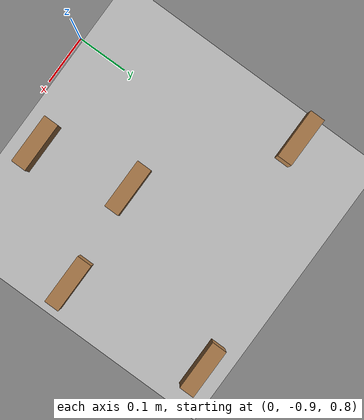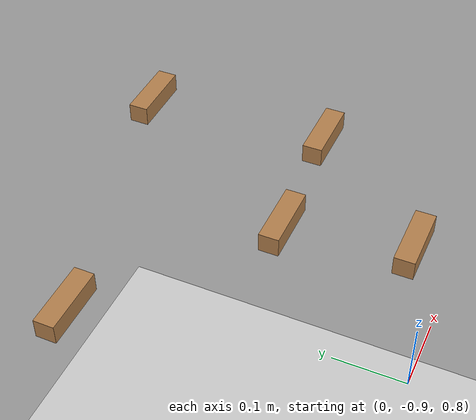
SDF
<sdf version="1.7">
 <world name="default">
  <light name="sun" type="directional">
   <pose>0 0 10 0 -0 0</pose>
   <diffuse>0.8 0.8 0.8 1</diffuse>
   <specular>0.2 0.2 0.2 1</specular>
   <attenuation>
    <range>1000</range>
    <constant>0.9</constant>
    <linear>0.01</linear>
    <quadratic>0.001</quadratic>
   </attenuation>
   <direction>-0.5 0.1 -0.9</direction>
   <spot><inner_angle>0</inner_angle><outer_angle>0</outer_angle><falloff>0</falloff></spot>
  </light>
  <gravity>0 0 -9.8</gravity>
  <magnetic_field>6e-06 2.3e-05 -4.2e-05</magnetic_field>
  <atmosphere type="adiabatic"/>
  <physics type="ode">
   <max_step_size>0.001</max_step_size>
   <real_time_factor>1</real_time_factor>
   <real_time_update_rate>1000</real_time_update_rate>
  </physics>
  <scene><ambient>0.4 0.4 0.4 1</ambient><background>0.7 0.7 0.7 1</background><shadows>1</shadows></scene>
  <spherical_coordinates>
   <surface_model>EARTH_WGS84</surface_model>
   <latitude_deg>0</latitude_deg>
   <longitude_deg>0</longitude_deg>
   <elevation>0</elevation>
   <heading_deg>0</heading_deg>
  </spherical_coordinates>
  <model name="ground_plane">
   <static>1</static>
   <link name="link">
    <collision name="collision">
     <geometry><plane><normal>0 0 1</normal><size>100 100</size></plane></geometry>
     <surface>
      <contact><collide_bitmask>65535</collide_bitmask></contact>
      <friction><ode><mu>100</mu><mu2>50</mu2></ode></friction>
     </surface>
    </collision>
    <visual name="visual">
     <cast_shadows>0</cast_shadows>
     <geometry><plane><normal>0 0 1</normal><size>100 100</size></plane></geometry>
     <material>
      <script><uri>file://media/materials/scripts/gazebo.material</uri><name>Gazebo/Grey</name></script>
     </material>
    </visual>
   </link>
  </model>
  <model name="unit_cylinder">
   <pose>0.007517 0.039531 -2.08389 0.064087 0.124552 0.476821</pose>
   <link name="link">
    <inertial>
     <mass>1</mass>
     <inertia><ixx>0.145833</ixx><ixy>0</ixy><ixz>0</ixz><iyy>0.145833</iyy><iyz>0</iyz><izz>0.125</izz></inertia>
    </inertial>
    <collision name="collision">
     <geometry><cylinder><radius>23.1912</radius><length>2.23849</length></cylinder></geometry>
    </collision>
    <visual name="visual">
     <geometry><cylinder><radius>23.1912</radius><length>2.23849</length></cylinder></geometry>
     <material>
      <script><name>Gazebo/Grey</name><uri>file://media/materials/scripts/gazebo.material</uri></script>
     </material>
    </visual>
   </link>
  </model>
  <model name="box_block">
   <link name="link">
    <inertial>
     <mass>0.063</mass>
     <inertia>
      <ixx>9.45e-06</ixx>
      <ixy>0</ixy>
      <ixz>0</ixz>
      <iyy>5.723e-05</iyy>
      <iyz>0</iyz>
      <izz>5.723e-05</izz>
     </inertia>
    </inertial>
    <visual name="visual">
     <geometry><box><size>0.1 0.03 0.03</size></box></geometry>
     <material>
      <script><name>Gazebo/Wood</name><uri>file://media/materials/scripts/gazebo.material</uri></script>
      <shader type="pixel"><normal_map>__default__</normal_map></shader>
      <ambient>1 1 1 1</ambient>
      <diffuse>1 1 1 1</diffuse>
      <specular>0.2 0.2 0.2 1</specular>
      <emissive>0 0 0 1</emissive>
     </material>
    </visual>
    <collision name="collision">
     <geometry><box><size>0.1 0.03 0.03</size></box></geometry>
     <surface>
      <friction>
       <ode><mu>1</mu><mu2>1</mu2><fdir1>0 0 0</fdir1><slip1>0</slip1><slip2>0</slip2></ode>
       <torsional>
        <coefficient>1</coefficient>
        <patch_radius>0</patch_radius>
        <surface_radius>0</surface_radius>
        <use_patch_radius>1</use_patch_radius>
        <ode><slip>0</slip></ode>
       </torsional>
      </friction>
      <bounce><restitution_coefficient>0</restitution_coefficient><threshold>1e+06</threshold></bounce>
      <contact>
       <collide_without_contact>0</collide_without_contact>
       <collide_without_contact_bitmask>1</collide_without_contact_bitmask>
       <collide_bitmask>1</collide_bitmask>
       <ode>
        <soft_cfm>0</soft_cfm>
        <soft_erp>0.2</soft_erp>
        <kp>1e+13</kp>
        <kd>1</kd>
        <max_vel>0.01</max_vel>
        <min_depth>0</min_depth>
       </ode>
       <bullet>
        <split_impulse>1</split_impulse>
        <split_impulse_penetration_threshold>-0.01</split_impulse_penetration_threshold>
        <soft_cfm>0</soft_cfm>
        <soft_erp>0.2</soft_erp>
        <kp>1e+13</kp>
        <kd>1</kd>
       </bullet>
      </contact>
     </surface>
    </collision>
   </link>
   <static>0</static>
   <pose>0.172828 -0.660427 0.830071 0 -0 0</pose>
  </model>
  <model name="box_block_clone">
   <link name="link">
    <inertial>
     <mass>0.063</mass>
     <inertia>
      <ixx>9.45e-06</ixx>
      <ixy>0</ixy>
      <ixz>0</ixz>
      <iyy>5.723e-05</iyy>
      <iyz>0</iyz>
      <izz>5.723e-05</izz>
     </inertia>
    </inertial>
    <visual name="visual">
     <geometry><box><size>0.1 0.03 0.03</size></box></geometry>
     <material>
      <script><name>Gazebo/Wood</name><uri>file://media/materials/scripts/gazebo.material</uri></script>
      <shader type="pixel"><normal_map>__default__</normal_map></shader>
      <ambient>1 1 1 1</ambient>
      <diffuse>1 1 1 1</diffuse>
      <specular>0.2 0.2 0.2 1</specular>
      <emissive>0 0 0 1</emissive>
     </material>
    </visual>
    <collision name="collision">
     <geometry><box><size>0.1 0.03 0.03</size></box></geometry>
     <surface>
      <friction>
       <ode><mu>1</mu><mu2>1</mu2><fdir1>0 0 0</fdir1><slip1>0</slip1><slip2>0</slip2></ode>
       <torsional>
        <coefficient>1</coefficient>
        <patch_radius>0</patch_radius>
        <surface_radius>0</surface_radius>
        <use_patch_radius>1</use_patch_radius>
        <ode><slip>0</slip></ode>
       </torsional>
      </friction>
      <bounce><restitution_coefficient>0</restitution_coefficient><threshold>1e+06</threshold></bounce>
      <contact>
       <collide_without_contact>0</collide_without_contact>
       <collide_without_contact_bitmask>1</collide_without_contact_bitmask>
       <collide_bitmask>1</collide_bitmask>
       <ode>
        <soft_cfm>0</soft_cfm>
        <soft_erp>0.2</soft_erp>
        <kp>1e+13</kp>
        <kd>1</kd>
        <max_vel>0.01</max_vel>
        <min_depth>0</min_depth>
       </ode>
       <bullet>
        <split_impulse>1</split_impulse>
        <split_impulse_penetration_threshold>-0.01</split_impulse_penetration_threshold>
        <soft_cfm>0</soft_cfm>
        <soft_erp>0.2</soft_erp>
        <kp>1e+13</kp>
        <kd>1</kd>
       </bullet>
      </contact>
     </surface>
    </collision>
   </link>
   <static>0</static>
   <pose>-0.081509 -0.464143 0.830071 0 -0 0</pose>
  </model>
  <model name="box_block_clone_0">
   <link name="link">
    <inertial>
     <mass>0.063</mass>
     <inertia>
      <ixx>9.45e-06</ixx>
      <ixy>0</ixy>
      <ixz>0</ixz>
      <iyy>5.723e-05</iyy>
      <iyz>0</iyz>
      <izz>5.723e-05</izz>
     </inertia>
    </inertial>
    <visual name="visual">
     <geometry><box><size>0.1 0.03 0.03</size></box></geometry>
     <material>
      <script><name>Gazebo/Wood</name><uri>file://media/materials/scripts/gazebo.material</uri></script>
      <shader type="pixel"><normal_map>__default__</normal_map></shader>
      <ambient>1 1 1 1</ambient>
      <diffuse>1 1 1 1</diffuse>
      <specular>0.2 0.2 0.2 1</specular>
      <emissive>0 0 0 1</emissive>
     </material>
    </visual>
    <collision name="collision">
     <geometry><box><size>0.1 0.03 0.03</size></box></geometry>
     <surface>
      <friction>
       <ode><mu>1</mu><mu2>1</mu2><fdir1>0 0 0</fdir1><slip1>0</slip1><slip2>0</slip2></ode>
       <torsional>
        <coefficient>1</coefficient>
        <patch_radius>0</patch_radius>
        <surface_radius>0</surface_radius>
        <use_patch_radius>1</use_patch_radius>
        <ode><slip>0</slip></ode>
       </torsional>
      </friction>
      <bounce><restitution_coefficient>0</restitution_coefficient><threshold>1e+06</threshold></bounce>
      <contact>
       <collide_without_contact>0</collide_without_contact>
       <collide_without_contact_bitmask>1</collide_without_contact_bitmask>
       <collide_bitmask>1</collide_bitmask>
       <ode>
        <soft_cfm>0</soft_cfm>
        <soft_erp>0.2</soft_erp>
        <kp>1e+13</kp>
        <kd>1</kd>
        <max_vel>0.01</max_vel>
        <min_depth>0</min_depth>
       </ode>
       <bullet>
        <split_impulse>1</split_impulse>
        <split_impulse_penetration_threshold>-0.01</split_impulse_penetration_threshold>
        <soft_cfm>0</soft_cfm>
        <soft_erp>0.2</soft_erp>
        <kp>1e+13</kp>
        <kd>1</kd>
       </bullet>
      </contact>
     </surface>
    </collision>
   </link>
   <static>0</static>
   <pose>0.206111 -0.841794 0.830071 0 -0 0</pose>
  </model>
  <model name="box_block_clone_1">
   <link name="link">
    <inertial>
     <mass>0.063</mass>
     <inertia>
      <ixx>9.45e-06</ixx>
      <ixy>0</ixy>
      <ixz>0</ixz>
      <iyy>5.723e-05</iyy>
      <iyz>0</iyz>
      <izz>5.723e-05</izz>
     </inertia>
    </inertial>
    <visual name="visual">
     <geometry><box><size>0.1 0.03 0.03</size></box></geometry>
     <material>
      <script><name>Gazebo/Wood</name><uri>file://media/materials/scripts/gazebo.material</uri></script>
      <shader type="pixel"><normal_map>__default__</normal_map></shader>
      <ambient>1 1 1 1</ambient>
      <diffuse>1 1 1 1</diffuse>
      <specular>0.2 0.2 0.2 1</specular>
      <emissive>0 0 0 1</emissive>
     </material>
    </visual>
    <collision name="collision">
     <geometry><box><size>0.1 0.03 0.03</size></box></geometry>
     <surface>
      <friction>
       <ode><mu>1</mu><mu2>1</mu2><fdir1>0 0 0</fdir1><slip1>0</slip1><slip2>0</slip2></ode>
       <torsional>
        <coefficient>1</coefficient>
        <patch_radius>0</patch_radius>
        <surface_radius>0</surface_radius>
        <use_patch_radius>1</use_patch_radius>
        <ode><slip>0</slip></ode>
       </torsional>
      </friction>
      <bounce><restitution_coefficient>0</restitution_coefficient><threshold>1e+06</threshold></bounce>
      <contact>
       <collide_without_contact>0</collide_without_contact>
       <collide_without_contact_bitmask>1</collide_without_contact_bitmask>
       <collide_bitmask>1</collide_bitmask>
       <ode>
        <soft_cfm>0</soft_cfm>
        <soft_erp>0.2</soft_erp>
        <kp>1e+13</kp>
        <kd>1</kd>
        <max_vel>0.01</max_vel>
        <min_depth>0</min_depth>
       </ode>
       <bullet>
        <split_impulse>1</split_impulse>
        <split_impulse_penetration_threshold>-0.01</split_impulse_penetration_threshold>
        <soft_cfm>0</soft_cfm>
        <soft_erp>0.2</soft_erp>
        <kp>1e+13</kp>
        <kd>1</kd>
       </bullet>
      </contact>
     </surface>
    </collision>
   </link>
   <static>0</static>
   <pose>0.354851 -0.361049 0.830071 0 -0 0</pose>
  </model>
  <model name="box_block_clone_2">
   <link name="link">
    <inertial>
     <mass>0.063</mass>
     <inertia>
      <ixx>9.45e-06</ixx>
      <ixy>0</ixy>
      <ixz>0</ixz>
      <iyy>5.723e-05</iyy>
      <iyz>0</iyz>
      <izz>5.723e-05</izz>
     </inertia>
    </inertial>
    <visual name="visual">
     <geometry><box><size>0.1 0.03 0.03</size></box></geometry>
     <material>
      <script><name>Gazebo/Wood</name><uri>file://media/materials/scripts/gazebo.material</uri></script>
      <shader type="pixel"><normal_map>__default__</normal_map></shader>
      <ambient>1 1 1 1</ambient>
      <diffuse>1 1 1 1</diffuse>
      <specular>0.2 0.2 0.2 1</specular>
      <emissive>0 0 0 1</emissive>
     </material>
    </visual>
    <collision name="collision">
     <geometry><box><size>0.1 0.03 0.03</size></box></geometry>
     <surface>
      <friction>
       <ode><mu>1</mu><mu2>1</mu2><fdir1>0 0 0</fdir1><slip1>0</slip1><slip2>0</slip2></ode>
       <torsional>
        <coefficient>1</coefficient>
        <patch_radius>0</patch_radius>
        <surface_radius>0</surface_radius>
        <use_patch_radius>1</use_patch_radius>
        <ode><slip>0</slip></ode>
       </torsional>
      </friction>
      <bounce><restitution_coefficient>0</restitution_coefficient><threshold>1e+06</threshold></bounce>
      <contact>
       <collide_without_contact>0</collide_without_contact>
       <collide_without_contact_bitmask>1</collide_without_contact_bitmask>
       <collide_bitmask>1</collide_bitmask>
       <ode>
        <soft_cfm>0</soft_cfm>
        <soft_erp>0.2</soft_erp>
        <kp>1e+13</kp>
        <kd>1</kd>
        <max_vel>0.01</max_vel>
        <min_depth>0</min_depth>
       </ode>
       <bullet>
        <split_impulse>1</split_impulse>
        <split_impulse_penetration_threshold>-0.01</split_impulse_penetration_threshold>
        <soft_cfm>0</soft_cfm>
        <soft_erp>0.2</soft_erp>
        <kp>1e+13</kp>
        <kd>1</kd>
       </bullet>
      </contact>
     </surface>
    </collision>
   </link>
   <static>0</static>
   <pose>0.373065 -0.646074 0.830071 0 -0 0</pose>
  </model>
 </world>
</sdf>
